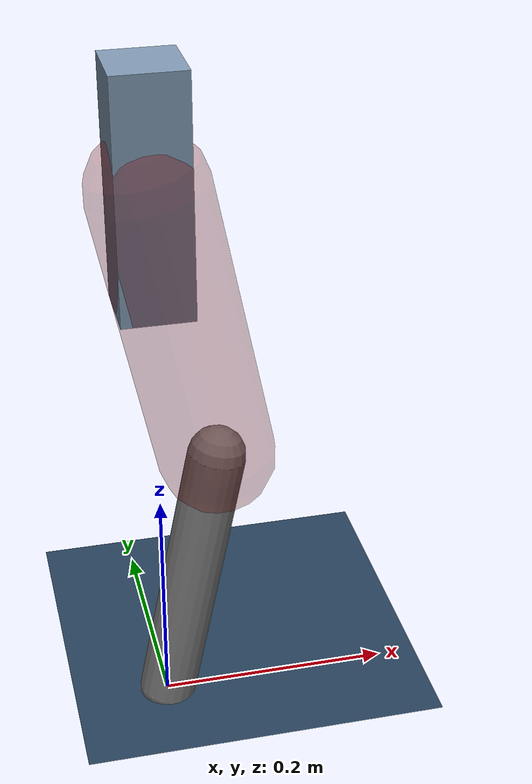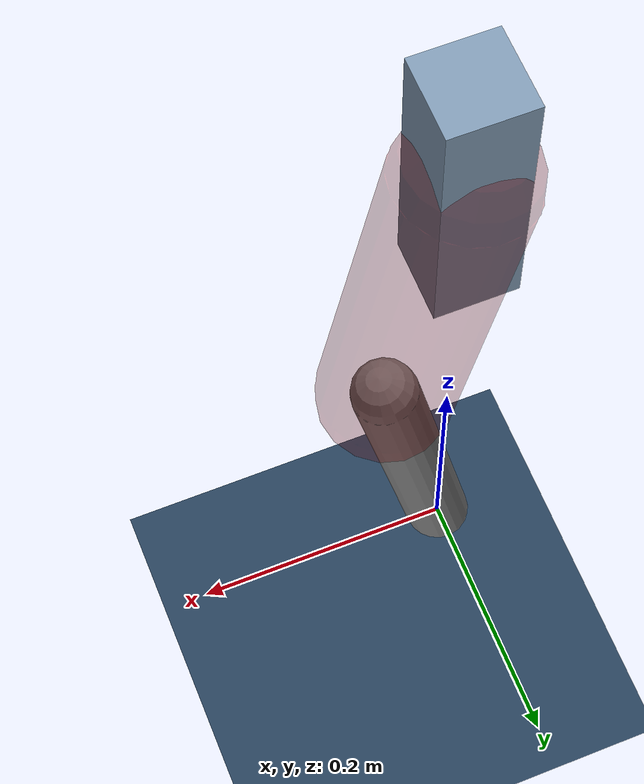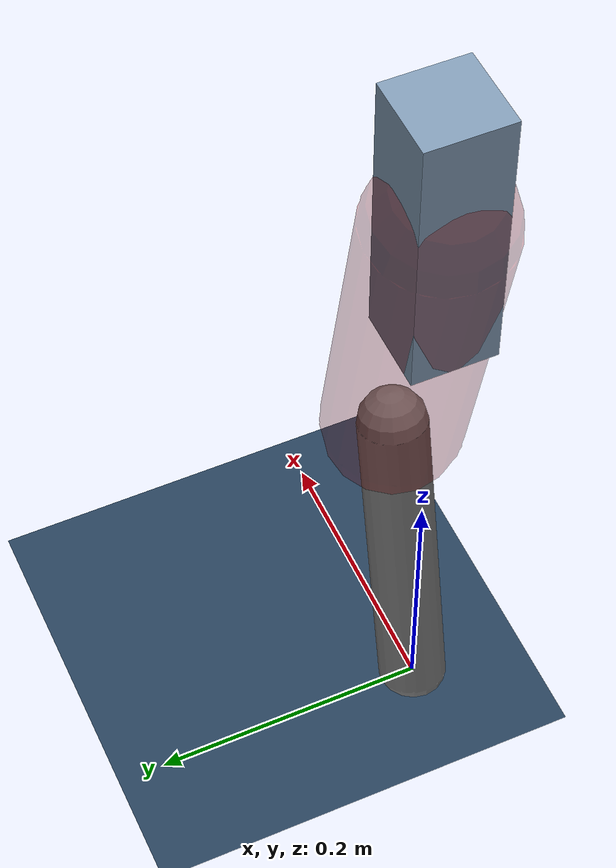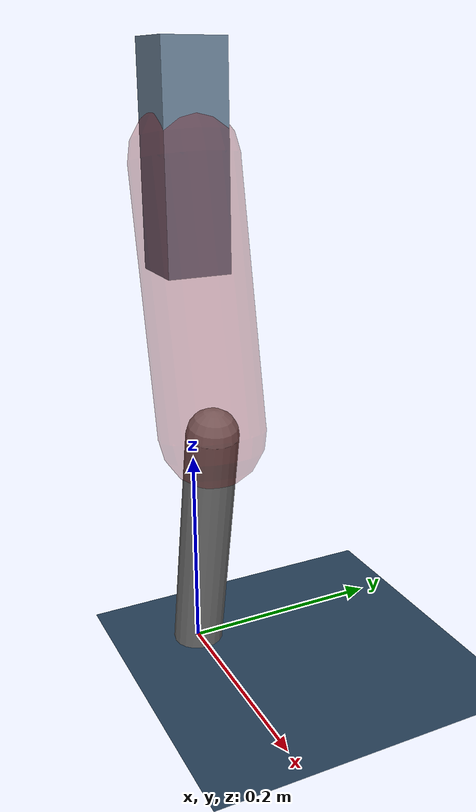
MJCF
<mujoco model="Hopper2D">
	<compiler inertiafromgeom="true" angle="radian" />
	<option timestep="0.001" integrator="implicit" cone="elliptic" solver="Newton" tolerance="1e-10" />

	<default>
		<geom contype="1" conaffinity="1" condim="3" friction="2 0.005 0.0001" solref="0.005 1" />
		<joint limited="true" damping="0.1" />
	</default>

	<asset>
		<texture name="skybox" type="skybox" builtin="gradient" rgb1=".4 .6 .8" rgb2="0 0 0" width="800" height="800" />
		<texture name="grid" type="2d" builtin="checker" rgb1=".1 .2 .3" rgb2=".2 .3 .4" width="300" height="300" mark="edge" markrgb=".2 .3 .4" />
		<material name="ground" texture="grid" texrepeat="1 1" texuniform="true" reflectance="0.1" />
		<material name="leg" rgba="0.5 0.6 0.7 1" />
	</asset>

	<worldbody>

		<geom name="floor" type="plane" size="5 5 0.25" material="ground" />

		<light directional="false" diffuse="0.8 0.8 0.8" specular="0.3 0.3 0.3" pos="0 0 2" dir="0 0 -1" />
		<light mode="targetbodycom" target="base" directional="false" diffuse="0.8 0.8 0.8" specular="0.3 0.3 0.3" pos="0 0 2" dir="0 0 -1" />

		<camera name="fixed" pos="0 -2 1" xyaxes="1 0 0 0 0 1" />
		<camera name="tracking" mode="trackcom" pos="0 -3 1" />

		<body name="root" pos="0 0 0.4850915535751068">
			<joint name="slide_x" type="slide" axis="1 0 0" range="-100 100" />
			<joint name="slide_z" type="slide" axis="0 0 1" range="0 10" />

			<body name="base" pos="0 0 0">
				<geom name="torso" type="box" size="0.03 0.03 0.1" mass="2.189" material="leg" />

				<body name="link1" pos="0 0 0" euler="0 1.3695158284299707 0">
					<joint type="hinge" axis="0 -1 0" pos="0 0 0" name="hinge1" limited="true" range="-3.14 3.14" stiffness="0" damping="0.1" />
					<geom name="thigh" type="capsule" fromto="0 0 0 0.24760440070632012 0 0" size="0.05" rgba="0.5 0 0 0.3" mass="0.8501714418364323" />

					<body name="link2" pos="0.24760440070632012 0 0" euler="0 0.40265766394922714 0">
						<joint type="hinge" axis="0 -1 0" pos="0 0 0" name="hinge2" limited="true" range="-3.14 3.14" stiffness="0" damping="0.1" />
						<geom name="shank" type="capsule" fromto="0 0 0 0.24748715286878667 0 0" size="0.025" mass="0.44048972229502936" />

					</body>
				</body>
			</body>
		</body>
	</worldbody>

	<actuator>
		<motor name="torque1" joint="hinge1" ctrlrange="-77.54414768501695 77.54414768501695" ctrllimited="true" gear="1" />
		<motor name="torque2" joint="hinge2" ctrlrange="-82.33659995724129 82.33659995724129" ctrllimited="true" gear="1" />
	</actuator>
</mujoco>
